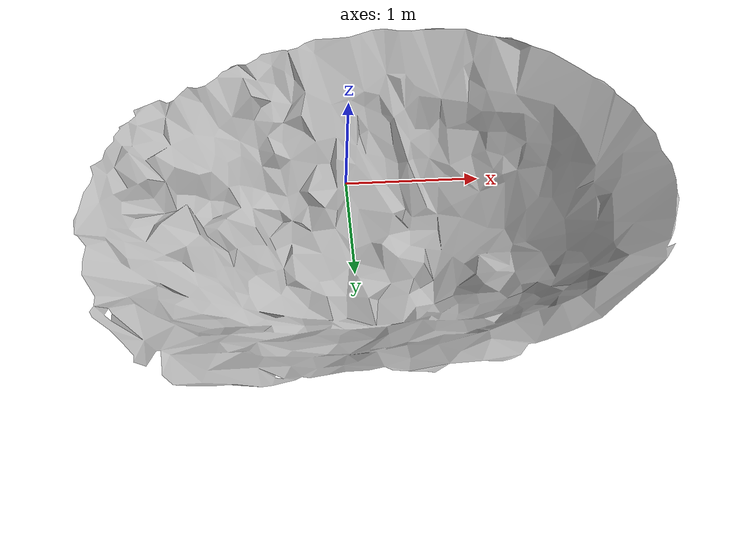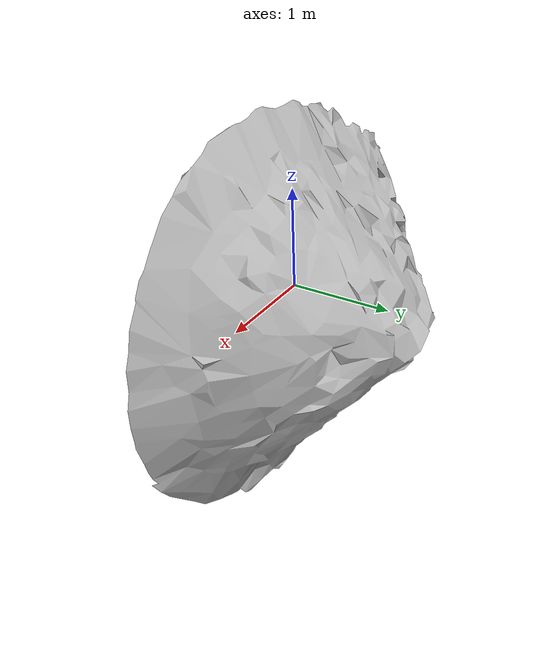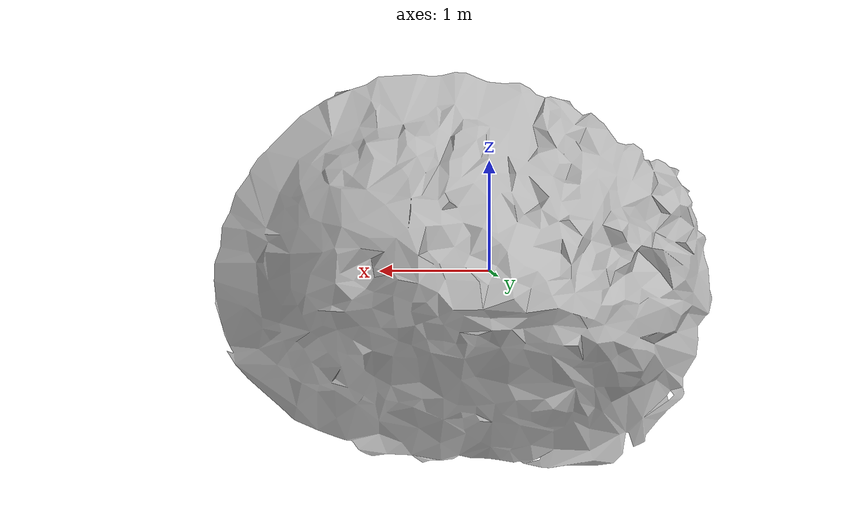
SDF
<?xml version="1.0" ?>
<sdf version="1.6">
    <model name="sand-dune_2K_0a625146-f652-4724-ad1f-ff705a37da8f">
        <static>true</static>
        <link name="link">
            <collision name="collision">
                <geometry>
                    <mesh>
                        <uri>model://sand/sand-dune_2K_0a625146-f652-4724-ad1f-ff705a37da8f/mesh/sand-dune_2K_0a625146-f652-4724-ad1f-ff705a37da8f_collision.dae</uri>
                    </mesh>
                </geometry>
            </collision>
            <visual name="visual">
                <geometry>
                    <mesh>
                        <uri>model://sand/sand-dune_2K_0a625146-f652-4724-ad1f-ff705a37da8f/mesh/sand-dune_2K_0a625146-f652-4724-ad1f-ff705a37da8f.dae</uri>
                    </mesh>
                </geometry>
                <material>
                    <script>
                        <uri>model://sand/sand-dune_2K_0a625146-f652-4724-ad1f-ff705a37da8f/materials/sand-dune_2K_0a625146-f652-4724-ad1f-ff705a37da8f.material</uri>
                        <name>sand-dune_2K_0a625146-f652-4724-ad1f-ff705a37da8f</name>
                    </script>
                </material>
            </visual>
        </link>
    </model>
</sdf>
